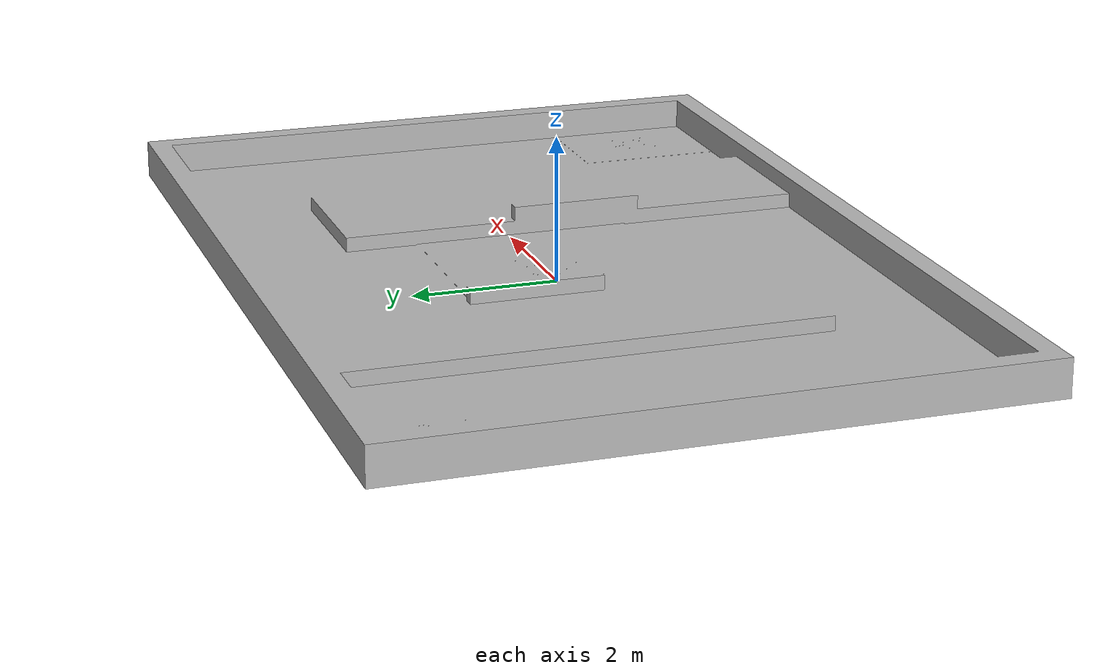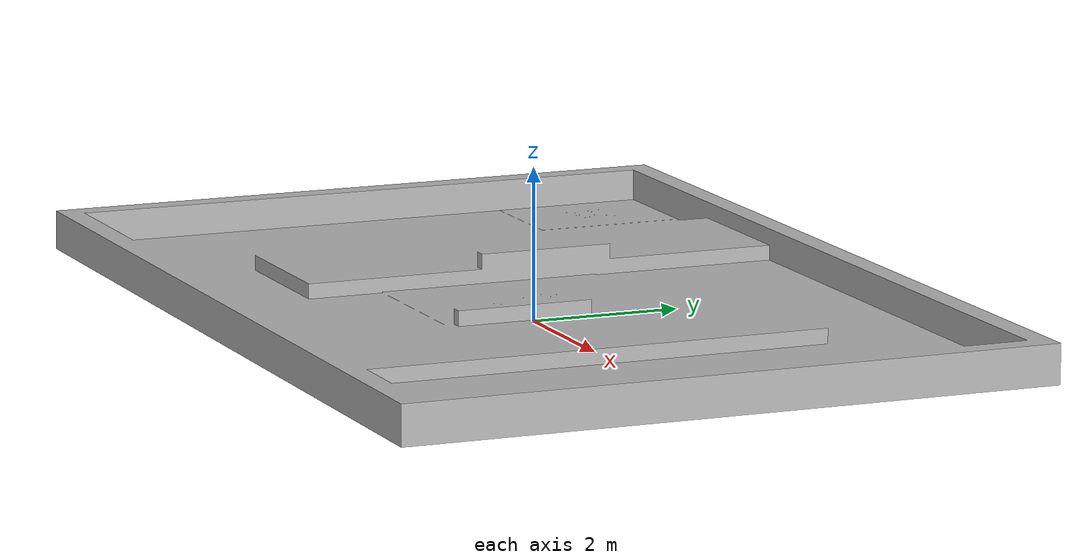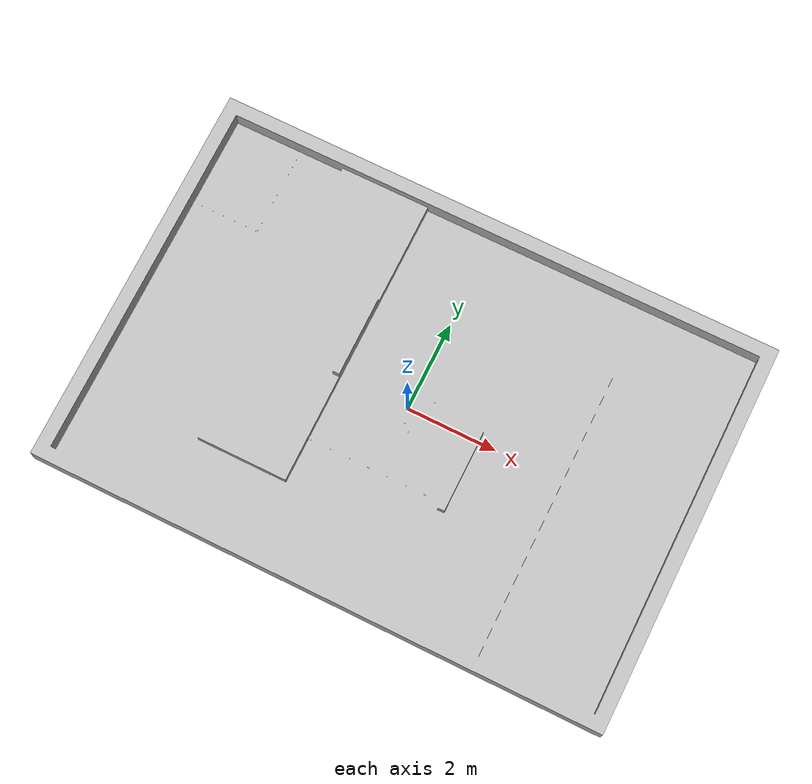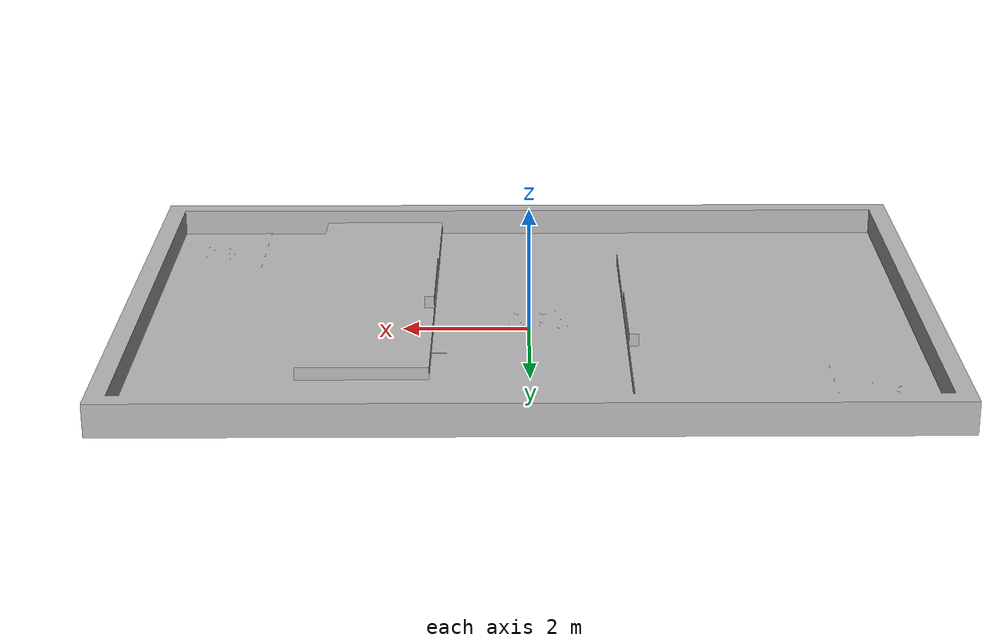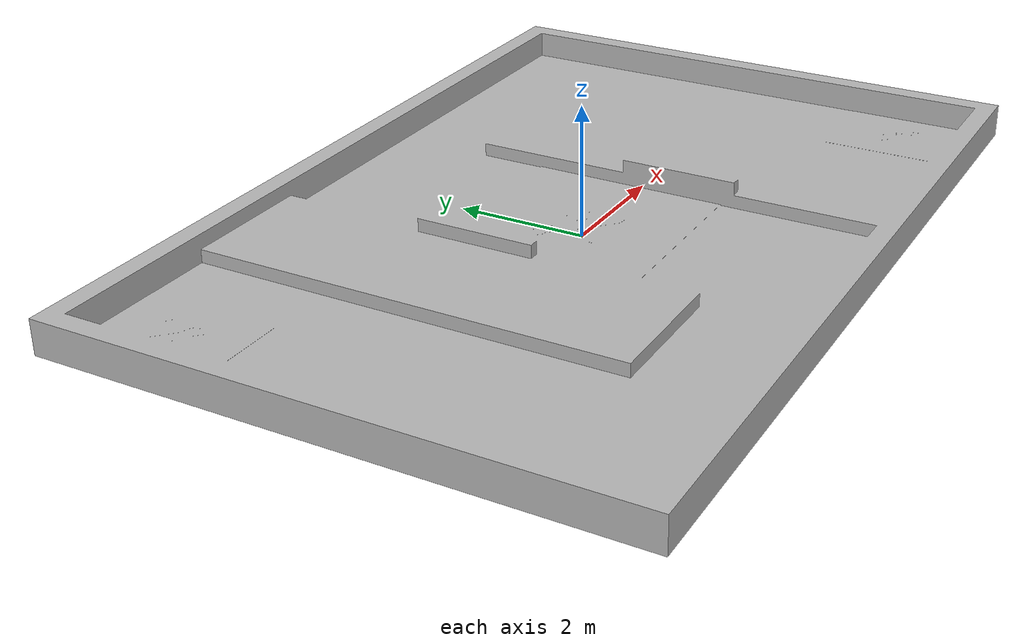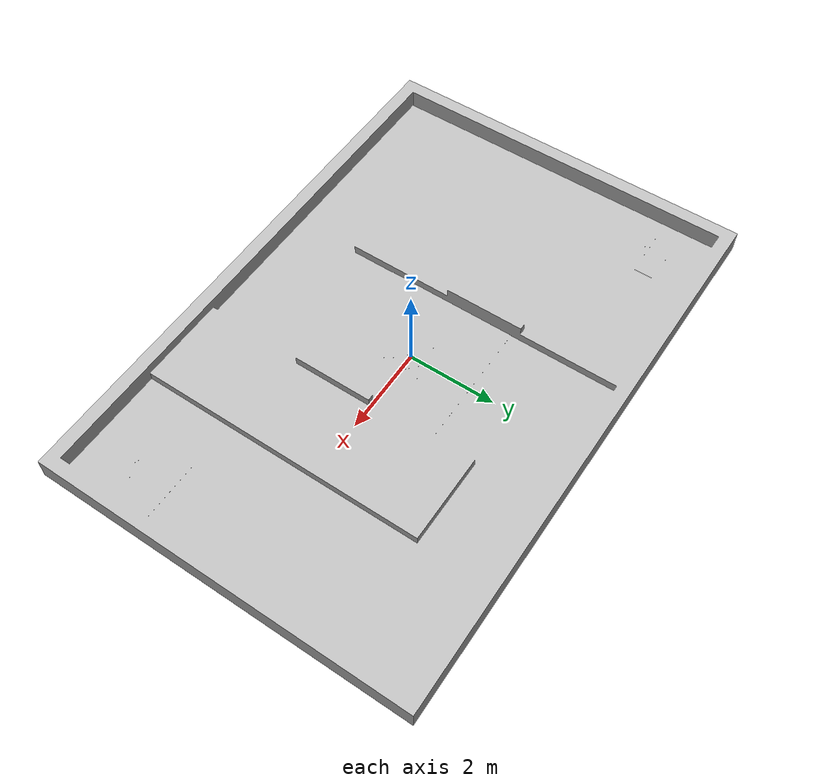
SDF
<?xml version='1.0'?>
<sdf version='1.6'>
  <model name='rmul_2026'>
    <static>true</static>
    <link name='body'>
      <pose frame=''>-6.3 -4.3 0.622 -1.5708 0 0</pose>
      <self_collide>0</self_collide>
      <kinematic>0</kinematic>
      <gravity>1</gravity>
      <visual name='visual'>
        <geometry>
          <mesh>
            <uri>model://rmul_2026/meshes/rmul_2026.dae</uri>
            <scale>0.001 0.001 0.001</scale>
          </mesh>
        </geometry>
      </visual>
      <collision name='collision'>
        <geometry>
          <mesh>
            <uri>model://rmul_2026/meshes/rmul_2026.dae</uri>
            <scale>0.001 0.001 0.001</scale>
          </mesh>
        </geometry>
      </collision>
    </link>
  </model>
</sdf>
